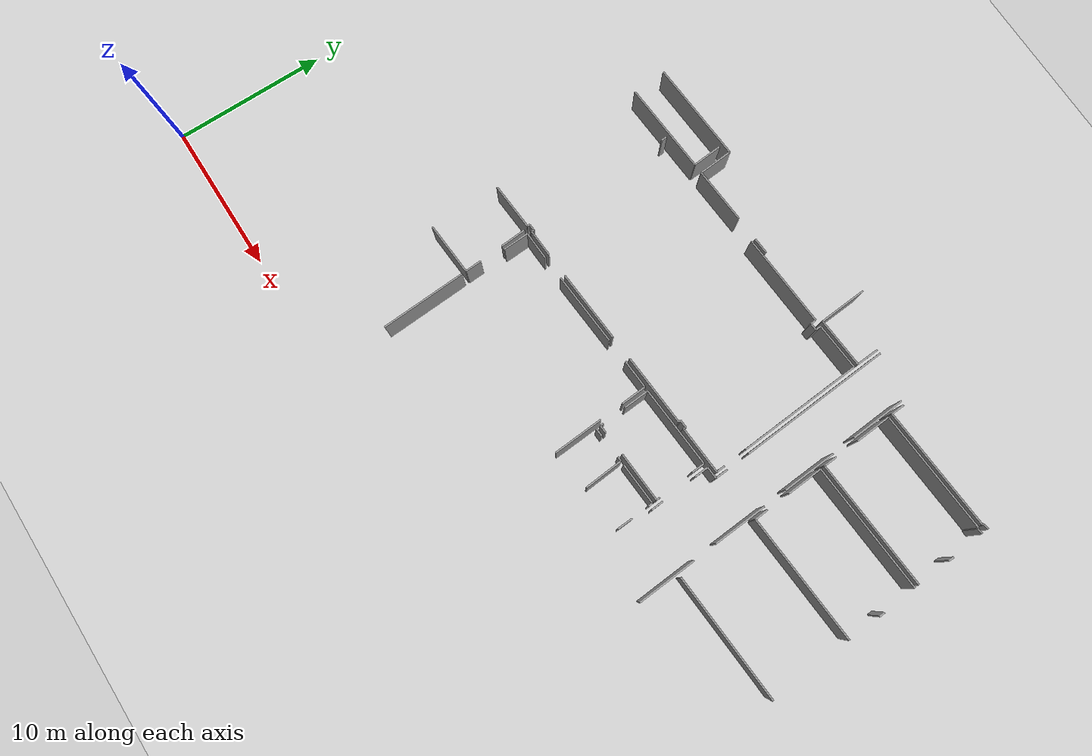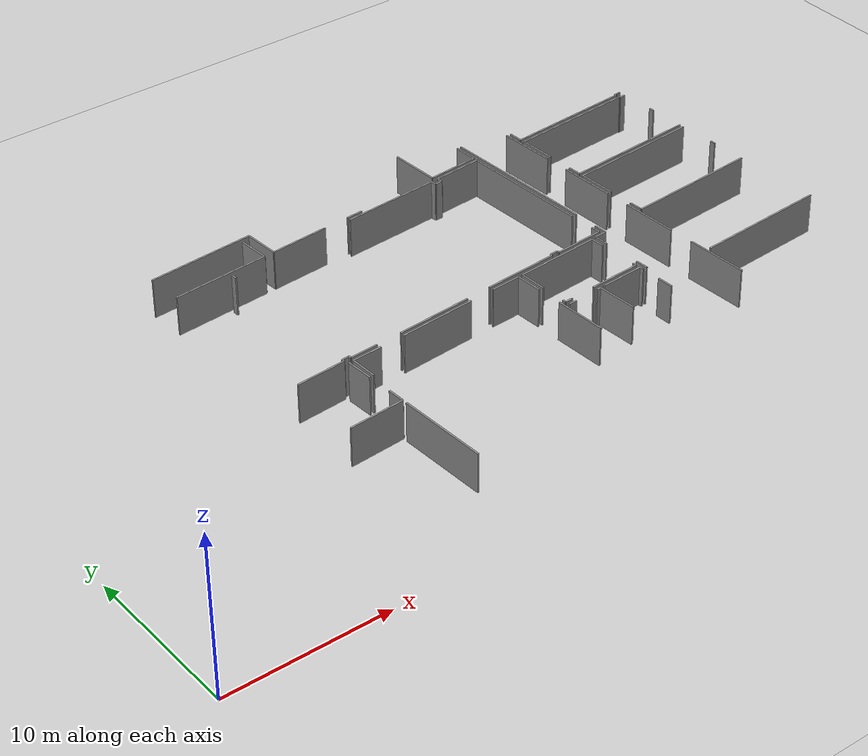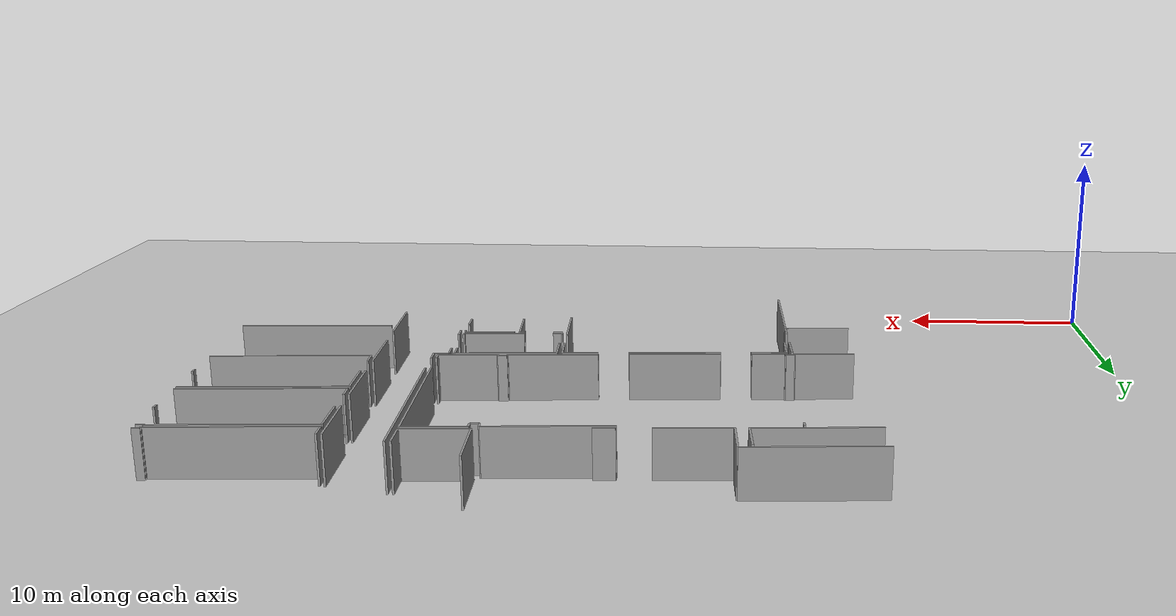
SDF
<sdf version="1.6">
 <world name="default">
  <model name="ground_plane">
   <static>1</static>
   <link name="link">
    <collision name="collision">
     <geometry><plane><normal>0 0 1</normal><size>100 100</size></plane></geometry>
     <surface><friction><ode><mu>100</mu><mu2>50</mu2></ode></friction></surface>
    </collision>
    <visual name="visual">
     <cast_shadows>0</cast_shadows>
     <geometry><plane><normal>0 0 1</normal><size>100 100</size></plane></geometry>
     <material>
      <script><uri>file://media/materials/scripts/gazebo.material</uri><name>Gazebo/Grey</name></script>
     </material>
    </visual>
   </link>
  </model>
  <model name="50025633">
   <static>1</static>
   <link name="Wall_52">
    <collision name="Wall_52_Collision">
     <geometry><box><size>3.49836622197 0.1 2.5</size></box></geometry>
     <pose>1.74918311098 0 1.25 0 0 0</pose>
    </collision>
    <visual name="Wall_52_Visual">
     <pose>1.74918311098 0 1.25 0 0 0</pose>
     <geometry><box><size>3.49836622197 0.1 2.5</size></box></geometry>
     <material>
      <script><uri>file://media/materials/scripts/gazebo.material</uri><name>Gazebo/Grey</name></script>
      <ambient>1 1 1 1</ambient>
     </material>
    </visual>
    <pose>68.6968894309 -37.3599481678 0 0 0 -3.07636271792</pose>
   </link>
   <link name="Wall_91">
    <collision name="Wall_91_Collision">
     <geometry><box><size>1.70477628408 0.1 2.5</size></box></geometry>
     <pose>0.852388142039 0 1.25 0 0 0</pose>
    </collision>
    <visual name="Wall_91_Visual">
     <pose>0.852388142039 0 1.25 0 0 0</pose>
     <geometry><box><size>1.70477628408 0.1 2.5</size></box></geometry>
     <material>
      <script><uri>file://media/materials/scripts/gazebo.material</uri><name>Gazebo/Grey</name></script>
      <ambient>1 1 1 1</ambient>
     </material>
    </visual>
    <pose>68.4355685983 -33.0010861901 0 0 0 -1.50591849774</pose>
   </link>
   <link name="Wall_92">
    <collision name="Wall_92_Collision">
     <geometry><box><size>1.08069719638 0.1 2.5</size></box></geometry>
     <pose>0.540348598191 0 1.25 0 0 0</pose>
    </collision>
    <visual name="Wall_92_Visual">
     <pose>0.540348598191 0 1.25 0 0 0</pose>
     <geometry><box><size>1.08069719638 0.1 2.5</size></box></geometry>
     <material>
      <script><uri>file://media/materials/scripts/gazebo.material</uri><name>Gazebo/Grey</name></script>
      <ambient>1 1 1 1</ambient>
     </material>
    </visual>
    <pose>68.6478520749 -36.280364096 0 0 0 -1.52540507436</pose>
   </link>
   <link name="Wall_129">
    <collision name="Wall_129_Collision">
     <geometry><box><size>5.62155952365 0.1 2.5</size></box></geometry>
     <pose>2.81077976182 0 1.25 0 0 0</pose>
    </collision>
    <visual name="Wall_129_Visual">
     <pose>2.81077976182 0 1.25 0 0 0</pose>
     <geometry><box><size>5.62155952365 0.1 2.5</size></box></geometry>
     <material>
      <script><uri>file://media/materials/scripts/gazebo.material</uri><name>Gazebo/Grey</name></script>
      <ambient>1 1 1 1</ambient>
     </material>
    </visual>
    <pose>68.7125153242 -37.6494718321 0 0 0 -1.52166965325</pose>
   </link>
   <link name="Wall_133">
    <collision name="Wall_133_Collision">
     <geometry><box><size>1.71167642976 0.1 2.5</size></box></geometry>
     <pose>0.855838214879 0 1.25 0 0 0</pose>
    </collision>
    <visual name="Wall_133_Visual">
     <pose>0.855838214879 0 1.25 0 0 0</pose>
     <geometry><box><size>1.71167642976 0.1 2.5</size></box></geometry>
     <material>
      <script><uri>file://media/materials/scripts/gazebo.material</uri><name>Gazebo/Grey</name></script>
      <ambient>1 1 1 1</ambient>
     </material>
    </visual>
    <pose>68.799664615 -34.6860148255 0 0 0 1.61036564958</pose>
   </link>
   <link name="Wall_134">
    <collision name="Wall_134_Collision">
     <geometry><box><size>1.85826231931 0.1 2.5</size></box></geometry>
     <pose>0.929131159655 0 1.25 0 0 0</pose>
    </collision>
    <visual name="Wall_134_Visual">
     <pose>0.929131159655 0 1.25 0 0 0</pose>
     <geometry><box><size>1.85826231931 0.1 2.5</size></box></geometry>
     <material>
      <script><uri>file://media/materials/scripts/gazebo.material</uri><name>Gazebo/Grey</name></script>
      <ambient>1 1 1 1</ambient>
     </material>
    </visual>
    <pose>68.7319524109 -32.9756782336 0 0 0 0.0443833431239</pose>
   </link>
   <link name="Wall_135">
    <collision name="Wall_135_Collision">
     <geometry><box><size>4.82396615874 0.1 2.5</size></box></geometry>
     <pose>2.41198307937 0 1.25 0 0 0</pose>
    </collision>
    <visual name="Wall_135_Visual">
     <pose>2.41198307937 0 1.25 0 0 0</pose>
     <geometry><box><size>4.82396615874 0.1 2.5</size></box></geometry>
     <material>
      <script><uri>file://media/materials/scripts/gazebo.material</uri><name>Gazebo/Grey</name></script>
      <ambient>1 1 1 1</ambient>
     </material>
    </visual>
    <pose>72.1732060395 -32.8078586809 0 0 0 0.0681290065202</pose>
   </link>
   <link name="Wall_136">
    <collision name="Wall_136_Collision">
     <geometry><box><size>1.89685816844 0.1 2.5</size></box></geometry>
     <pose>0.948429084222 0 1.25 0 0 0</pose>
    </collision>
    <visual name="Wall_136_Visual">
     <pose>0.948429084222 0 1.25 0 0 0</pose>
     <geometry><box><size>1.89685816844 0.1 2.5</size></box></geometry>
     <material>
      <script><uri>file://media/materials/scripts/gazebo.material</uri><name>Gazebo/Grey</name></script>
      <ambient>1 1 1 1</ambient>
     </material>
    </visual>
    <pose>78.5710565264 -32.3911681943 0 0 0 0.056958515502</pose>
   </link>
   <link name="Wall_137">
    <collision name="Wall_137_Collision">
     <geometry><box><size>1.67291849806 0.1 2.5</size></box></geometry>
     <pose>0.836459249029 0 1.25 0 0 0</pose>
    </collision>
    <visual name="Wall_137_Visual">
     <pose>0.836459249029 0 1.25 0 0 0</pose>
     <geometry><box><size>1.67291849806 0.1 2.5</size></box></geometry>
     <material>
      <script><uri>file://media/materials/scripts/gazebo.material</uri><name>Gazebo/Grey</name></script>
      <ambient>1 1 1 1</ambient>
     </material>
    </visual>
    <pose>80.4648385642 -32.2831843792 0 0 0 -1.50620325706</pose>
   </link>
   <link name="Wall_138">
    <collision name="Wall_138_Collision">
     <geometry><box><size>3.2683389742 0.1 2.5</size></box></geometry>
     <pose>1.6341694871 0 1.25 0 0 0</pose>
    </collision>
    <visual name="Wall_138_Visual">
     <pose>1.6341694871 0 1.25 0 0 0</pose>
     <geometry><box><size>3.2683389742 0.1 2.5</size></box></geometry>
     <material>
      <script><uri>file://media/materials/scripts/gazebo.material</uri><name>Gazebo/Grey</name></script>
      <ambient>1 1 1 1</ambient>
     </material>
    </visual>
    <pose>80.6620043066 -35.5491231079 0 0 0 -1.51105673993</pose>
   </link>
   <link name="Wall_141">
    <collision name="Wall_141_Collision">
     <geometry><box><size>3.12935003412 0.1 2.5</size></box></geometry>
     <pose>1.56467501706 0 1.25 0 0 0</pose>
    </collision>
    <visual name="Wall_141_Visual">
     <pose>1.56467501706 0 1.25 0 0 0</pose>
     <geometry><box><size>3.12935003412 0.1 2.5</size></box></geometry>
     <material>
      <script><uri>file://media/materials/scripts/gazebo.material</uri><name>Gazebo/Grey</name></script>
      <ambient>1 1 1 1</ambient>
     </material>
    </visual>
    <pose>86.8868266098 -31.5938665193 0 0 0 -3.08057928312</pose>
   </link>
   <link name="Wall_142">
    <collision name="Wall_142_Collision">
     <geometry><box><size>0.158038153231 0.1 2.5</size></box></geometry>
     <pose>0.0790190766157 0 1.25 0 0 0</pose>
    </collision>
    <visual name="Wall_142_Visual">
     <pose>0.0790190766157 0 1.25 0 0 0</pose>
     <geometry><box><size>0.158038153231 0.1 2.5</size></box></geometry>
     <material>
      <script><uri>file://media/materials/scripts/gazebo.material</uri><name>Gazebo/Grey</name></script>
      <ambient>1 1 1 1</ambient>
     </material>
    </visual>
    <pose>83.7632994772 -31.7846802726 0 0 0 1.61099991351</pose>
   </link>
   <link name="Wall_143">
    <collision name="Wall_143_Collision">
     <geometry><box><size>0.493308496639 0.1 2.5</size></box></geometry>
     <pose>0.246654248319 0 1.25 0 0 0</pose>
    </collision>
    <visual name="Wall_143_Visual">
     <pose>0.246654248319 0 1.25 0 0 0</pose>
     <geometry><box><size>0.493308496639 0.1 2.5</size></box></geometry>
     <material>
      <script><uri>file://media/materials/scripts/gazebo.material</uri><name>Gazebo/Grey</name></script>
      <ambient>1 1 1 1</ambient>
     </material>
    </visual>
    <pose>83.7569474881 -31.626769823 0 0 0 -3.09032251336</pose>
   </link>
   <link name="Wall_144">
    <collision name="Wall_144_Collision">
     <geometry><box><size>0.139422905689 0.1 2.5</size></box></geometry>
     <pose>0.0697114528446 0 1.25 0 0 0</pose>
    </collision>
    <visual name="Wall_144_Visual">
     <pose>0.0697114528446 0 1.25 0 0 0</pose>
     <geometry><box><size>0.139422905689 0.1 2.5</size></box></geometry>
     <material>
      <script><uri>file://media/materials/scripts/gazebo.material</uri><name>Gazebo/Grey</name></script>
      <ambient>1 1 1 1</ambient>
     </material>
    </visual>
    <pose>83.2642872115 -31.6520507397 0 0 0 -1.48046641813</pose>
   </link>
   <link name="Wall_145">
    <collision name="Wall_145_Collision">
     <geometry><box><size>4.73380179857 0.1 2.5</size></box></geometry>
     <pose>2.36690089928 0 1.25 0 0 0</pose>
    </collision>
    <visual name="Wall_145_Visual">
     <pose>2.36690089928 0 1.25 0 0 0</pose>
     <geometry><box><size>4.73380179857 0.1 2.5</size></box></geometry>
     <material>
      <script><uri>file://media/materials/scripts/gazebo.material</uri><name>Gazebo/Grey</name></script>
      <ambient>1 1 1 1</ambient>
     </material>
    </visual>
    <pose>83.27686415 -31.790905222 0 0 0 -3.0788340156</pose>
   </link>
   <link name="Wall_146">
    <collision name="Wall_146_Collision">
     <geometry><box><size>4.77494742308 0.1 2.5</size></box></geometry>
     <pose>2.38747371154 0 1.25 0 0 0</pose>
    </collision>
    <visual name="Wall_146_Visual">
     <pose>2.38747371154 0 1.25 0 0 0</pose>
     <geometry><box><size>4.77494742308 0.1 2.5</size></box></geometry>
     <material>
      <script><uri>file://media/materials/scripts/gazebo.material</uri><name>Gazebo/Grey</name></script>
      <ambient>1 1 1 1</ambient>
     </material>
    </visual>
    <pose>76.9417713157 -32.2056901119 0 0 0 -3.07542976725</pose>
   </link>
   <link name="Wall_147">
    <collision name="Wall_147_Collision">
     <geometry><box><size>1.78157904599 0.1 2.5</size></box></geometry>
     <pose>0.890789522996 0 1.25 0 0 0</pose>
    </collision>
    <visual name="Wall_147_Visual">
     <pose>0.890789522996 0 1.25 0 0 0</pose>
     <geometry><box><size>1.78157904599 0.1 2.5</size></box></geometry>
     <material>
      <script><uri>file://media/materials/scripts/gazebo.material</uri><name>Gazebo/Grey</name></script>
      <ambient>1 1 1 1</ambient>
     </material>
    </visual>
    <pose>70.5429045105 -32.6012919946 0 0 0 -3.09265624266</pose>
   </link>
   <link name="Wall_148">
    <collision name="Wall_148_Collision">
     <geometry><box><size>0.159689006612 0.1 2.5</size></box></geometry>
     <pose>0.0798445033062 0 1.25 0 0 0</pose>
    </collision>
    <visual name="Wall_148_Visual">
     <pose>0.0798445033062 0 1.25 0 0 0</pose>
     <geometry><box><size>0.159689006612 0.1 2.5</size></box></geometry>
     <material>
      <script><uri>file://media/materials/scripts/gazebo.material</uri><name>Gazebo/Grey</name></script>
      <ambient>1 1 1 1</ambient>
     </material>
    </visual>
    <pose>68.763458277 -32.6884412854 0 0 0 1.57079632679</pose>
   </link>
   <link name="Wall_149">
    <collision name="Wall_149_Collision">
     <geometry><box><size>0.443646949012 0.1 2.5</size></box></geometry>
     <pose>0.221823474506 0 1.25 0 0 0</pose>
    </collision>
    <visual name="Wall_149_Visual">
     <pose>0.221823474506 0 1.25 0 0 0</pose>
     <geometry><box><size>0.443646949012 0.1 2.5</size></box></geometry>
     <material>
      <script><uri>file://media/materials/scripts/gazebo.material</uri><name>Gazebo/Grey</name></script>
      <ambient>1 1 1 1</ambient>
     </material>
    </visual>
    <pose>68.763458277 -32.5287522788 0 0 0 -3.09260664463</pose>
   </link>
   <link name="Wall_150">
    <collision name="Wall_150_Collision">
     <geometry><box><size>0.16721418037 0.1 2.5</size></box></geometry>
     <pose>0.0836070901848 0 1.25 0 0 0</pose>
    </collision>
    <visual name="Wall_150_Visual">
     <pose>0.0836070901848 0 1.25 0 0 0</pose>
     <geometry><box><size>0.16721418037 0.1 2.5</size></box></geometry>
     <material>
      <script><uri>file://media/materials/scripts/gazebo.material</uri><name>Gazebo/Grey</name></script>
      <ambient>1 1 1 1</ambient>
     </material>
    </visual>
    <pose>68.3203435156 -32.5504760816 0 0 0 -1.6141152177</pose>
   </link>
   <link name="Wall_151">
    <collision name="Wall_151_Collision">
     <geometry><box><size>3.11337330929 0.1 2.5</size></box></geometry>
     <pose>1.55668665464 0 1.25 0 0 0</pose>
    </collision>
    <visual name="Wall_151_Visual">
     <pose>1.55668665464 0 1.25 0 0 0</pose>
     <geometry><box><size>3.11337330929 0.1 2.5</size></box></geometry>
     <material>
      <script><uri>file://media/materials/scripts/gazebo.material</uri><name>Gazebo/Grey</name></script>
      <ambient>1 1 1 1</ambient>
     </material>
    </visual>
    <pose>68.313102248 -32.7175333956 0 0 0 -3.07576820205</pose>
   </link>
   <link name="Wall_157">
    <collision name="Wall_157_Collision">
     <geometry><box><size>0.357357759727 0.1 2.5</size></box></geometry>
     <pose>0.178678879864 0 1.25 0 0 0</pose>
    </collision>
    <visual name="Wall_157_Visual">
     <pose>0.178678879864 0 1.25 0 0 0</pose>
     <geometry><box><size>0.357357759727 0.1 2.5</size></box></geometry>
     <material>
      <script><uri>file://media/materials/scripts/gazebo.material</uri><name>Gazebo/Grey</name></script>
      <ambient>1 1 1 1</ambient>
     </material>
    </visual>
    <pose>68.17170697 -22.7325876098 0 0 0 1.61667159088</pose>
   </link>
   <link name="Wall_159">
    <collision name="Wall_159_Collision">
     <geometry><box><size>6.13525297994 0.1 2.5</size></box></geometry>
     <pose>3.06762648997 0 1.25 0 0 0</pose>
    </collision>
    <visual name="Wall_159_Visual">
     <pose>3.06762648997 0 1.25 0 0 0</pose>
     <geometry><box><size>6.13525297994 0.1 2.5</size></box></geometry>
     <material>
      <script><uri>file://media/materials/scripts/gazebo.material</uri><name>Gazebo/Grey</name></script>
      <ambient>1 1 1 1</ambient>
     </material>
    </visual>
    <pose>76.5415960008 -21.8462310473 0 0 0 0.0596702015586</pose>
   </link>
   <link name="Wall_160">
    <collision name="Wall_160_Collision">
     <geometry><box><size>0.360386158556 0.1 2.5</size></box></geometry>
     <pose>0.180193079278 0 1.25 0 0 0</pose>
    </collision>
    <visual name="Wall_160_Visual">
     <pose>0.180193079278 0 1.25 0 0 0</pose>
     <geometry><box><size>0.360386158556 0.1 2.5</size></box></geometry>
     <material>
      <script><uri>file://media/materials/scripts/gazebo.material</uri><name>Gazebo/Grey</name></script>
      <ambient>1 1 1 1</ambient>
     </material>
    </visual>
    <pose>82.6659298359 -21.4803564736 0 0 0 -1.43323645024</pose>
   </link>
   <link name="Wall_161">
    <collision name="Wall_161_Collision">
     <geometry><box><size>0.44543584501 0.1 2.5</size></box></geometry>
     <pose>0.222717922505 0 1.25 0 0 0</pose>
    </collision>
    <visual name="Wall_161_Visual">
     <pose>0.222717922505 0 1.25 0 0 0</pose>
     <geometry><box><size>0.44543584501 0.1 2.5</size></box></geometry>
     <material>
      <script><uri>file://media/materials/scripts/gazebo.material</uri><name>Gazebo/Grey</name></script>
      <ambient>1 1 1 1</ambient>
     </material>
    </visual>
    <pose>82.7153483113 -21.8373382625 0 0 0 0.049360215969</pose>
   </link>
   <link name="Wall_162">
    <collision name="Wall_162_Collision">
     <geometry><box><size>0.362947478282 0.1 2.5</size></box></geometry>
     <pose>0.181473739141 0 1.25 0 0 0</pose>
    </collision>
    <visual name="Wall_162_Visual">
     <pose>0.181473739141 0 1.25 0 0 0</pose>
     <geometry><box><size>0.362947478282 0.1 2.5</size></box></geometry>
     <material>
      <script><uri>file://media/materials/scripts/gazebo.material</uri><name>Gazebo/Grey</name></script>
      <ambient>1 1 1 1</ambient>
     </material>
    </visual>
    <pose>83.1602416297 -21.8153603801 0 0 0 1.61631496843</pose>
   </link>
   <link name="Wall_163">
    <collision name="Wall_163_Collision">
     <geometry><box><size>3.08778498123 0.1 2.5</size></box></geometry>
     <pose>1.54389249062 0 1.25 0 0 0</pose>
    </collision>
    <visual name="Wall_163_Visual">
     <pose>1.54389249062 0 1.25 0 0 0</pose>
     <geometry><box><size>3.08778498123 0.1 2.5</size></box></geometry>
     <material>
      <script><uri>file://media/materials/scripts/gazebo.material</uri><name>Gazebo/Grey</name></script>
      <ambient>1 1 1 1</ambient>
     </material>
    </visual>
    <pose>83.1437264579 -21.4527888408 0 0 0 0.0658347090613</pose>
   </link>
   <link name="Wall_164">
    <collision name="Wall_164_Collision">
     <geometry><box><size>8.20057524663 0.1 2.5</size></box></geometry>
     <pose>4.10028762332 0 1.25 0 0 0</pose>
    </collision>
    <visual name="Wall_164_Visual">
     <pose>4.10028762332 0 1.25 0 0 0</pose>
     <geometry><box><size>8.20057524663 0.1 2.5</size></box></geometry>
     <material>
      <script><uri>file://media/materials/scripts/gazebo.material</uri><name>Gazebo/Grey</name></script>
      <ambient>1 1 1 1</ambient>
     </material>
    </visual>
    <pose>86.2248223031 -21.2496522286 0 0 0 -1.50874375874</pose>
   </link>
   <link name="Wall_165">
    <collision name="Wall_165_Collision">
     <geometry><box><size>0.580390725282 0.1 2.5</size></box></geometry>
     <pose>0.290195362641 0 1.25 0 0 0</pose>
    </collision>
    <visual name="Wall_165_Visual">
     <pose>0.290195362641 0 1.25 0 0 0</pose>
     <geometry><box><size>0.580390725282 0.1 2.5</size></box></geometry>
     <material>
      <script><uri>file://media/materials/scripts/gazebo.material</uri><name>Gazebo/Grey</name></script>
      <ambient>1 1 1 1</ambient>
     </material>
    </visual>
    <pose>86.8455386804 -31.0149462304 0 0 0 -1.49959802721</pose>
   </link>
   <link name="Wall_166">
    <collision name="Wall_166_Collision">
     <geometry><box><size>1.05881522224 0.1 2.5</size></box></geometry>
     <pose>0.529407611119 0 1.25 0 0 0</pose>
    </collision>
    <visual name="Wall_166_Visual">
     <pose>0.529407611119 0 1.25 0 0 0</pose>
     <geometry><box><size>1.05881522224 0.1 2.5</size></box></geometry>
     <material>
      <script><uri>file://media/materials/scripts/gazebo.material</uri><name>Gazebo/Grey</name></script>
      <ambient>1 1 1 1</ambient>
     </material>
    </visual>
    <pose>77.6155903221 -21.5232959201 0 0 0 -3.08901589814</pose>
   </link>
   <link name="Wall_167">
    <collision name="Wall_167_Collision">
     <geometry><box><size>3.69764949805 0.1 2.5</size></box></geometry>
     <pose>1.84882474902 0 1.25 0 0 0</pose>
    </collision>
    <visual name="Wall_167_Visual">
     <pose>1.84882474902 0 1.25 0 0 0</pose>
     <geometry><box><size>3.69764949805 0.1 2.5</size></box></geometry>
     <material>
      <script><uri>file://media/materials/scripts/gazebo.material</uri><name>Gazebo/Grey</name></script>
      <ambient>1 1 1 1</ambient>
     </material>
    </visual>
    <pose>74.9519472023 -21.6551632144 0 0 0 -3.07671567711</pose>
   </link>
   <link name="Wall_168">
    <collision name="Wall_168_Collision">
     <geometry><box><size>2.24959186515 0.1 2.5</size></box></geometry>
     <pose>1.12479593257 0 1.25 0 0 0</pose>
    </collision>
    <visual name="Wall_168_Visual">
     <pose>1.12479593257 0 1.25 0 0 0</pose>
     <geometry><box><size>2.24959186515 0.1 2.5</size></box></geometry>
     <material>
      <script><uri>file://media/materials/scripts/gazebo.material</uri><name>Gazebo/Grey</name></script>
      <ambient>1 1 1 1</ambient>
     </material>
    </visual>
    <pose>71.2620767193 -21.894887284 0 0 0 1.63867174811</pose>
   </link>
   <link name="Wall_169">
    <collision name="Wall_169_Collision">
     <geometry><box><size>6.69285484244 0.1 2.5</size></box></geometry>
     <pose>3.34642742122 0 1.25 0 0 0</pose>
    </collision>
    <visual name="Wall_169_Visual">
     <pose>3.34642742122 0 1.25 0 0 0</pose>
     <geometry><box><size>6.69285484244 0.1 2.5</size></box></geometry>
     <material>
      <script><uri>file://media/materials/scripts/gazebo.material</uri><name>Gazebo/Grey</name></script>
      <ambient>1 1 1 1</ambient>
     </material>
    </visual>
    <pose>71.1095019405 -19.6504754464 0 0 0 -3.07931237481</pose>
   </link>
   <link name="Wall_181">
    <collision name="Wall_181_Collision">
     <geometry><box><size>6.05910928792 0.1 2.5</size></box></geometry>
     <pose>3.02955464396 0 1.25 0 0 0</pose>
    </collision>
    <visual name="Wall_181_Visual">
     <pose>3.02955464396 0 1.25 0 0 0</pose>
     <geometry><box><size>6.05910928792 0.1 2.5</size></box></geometry>
     <material>
      <script><uri>file://media/materials/scripts/gazebo.material</uri><name>Gazebo/Grey</name></script>
      <ambient>1 1 1 1</ambient>
     </material>
    </visual>
    <pose>70.6190013403 -21.9309665822 0 0 0 -3.07827272142</pose>
   </link>
   <link name="Wall_185">
    <collision name="Wall_185_Collision">
     <geometry><box><size>1.95926395237 0.1 2.5</size></box></geometry>
     <pose>0.979631976184 0 1.25 0 0 0</pose>
    </collision>
    <visual name="Wall_185_Visual">
     <pose>0.979631976184 0 1.25 0 0 0</pose>
     <geometry><box><size>1.95926395237 0.1 2.5</size></box></geometry>
     <material>
      <script><uri>file://media/materials/scripts/gazebo.material</uri><name>Gazebo/Grey</name></script>
      <ambient>1 1 1 1</ambient>
     </material>
    </visual>
    <pose>70.4703647947 -19.9773488068 0 0 0 -1.49485990707</pose>
   </link>
   <link name="Wall_190">
    <collision name="Wall_190_Collision">
     <geometry><box><size>0.803759660868 0.1 2.5</size></box></geometry>
     <pose>0.401879830434 0 1.25 0 0 0</pose>
    </collision>
    <visual name="Wall_190_Visual">
     <pose>0.401879830434 0 1.25 0 0 0</pose>
     <geometry><box><size>0.803759660868 0.1 2.5</size></box></geometry>
     <material>
      <script><uri>file://media/materials/scripts/gazebo.material</uri><name>Gazebo/Grey</name></script>
      <ambient>1 1 1 1</ambient>
     </material>
    </visual>
    <pose>86.6313496071 -35.9744522997 0 0 0 1.63928851541</pose>
   </link>
   <link name="Wall_191">
    <collision name="Wall_191_Collision">
     <geometry><box><size>0.924139256032 0.1 2.5</size></box></geometry>
     <pose>0.462069628016 0 1.25 0 0 0</pose>
    </collision>
    <visual name="Wall_191_Visual">
     <pose>0.462069628016 0 1.25 0 0 0</pose>
     <geometry><box><size>0.924139256032 0.1 2.5</size></box></geometry>
     <material>
      <script><uri>file://media/materials/scripts/gazebo.material</uri><name>Gazebo/Grey</name></script>
      <ambient>1 1 1 1</ambient>
     </material>
    </visual>
    <pose>86.4280859551 -32.8054449251 0 0 0 1.62429698506</pose>
   </link>
   <link name="Wall_192">
    <collision name="Wall_192_Collision">
     <geometry><box><size>0.775673754788 0.1 2.5</size></box></geometry>
     <pose>0.387836877394 0 1.25 0 0 0</pose>
    </collision>
    <visual name="Wall_192_Visual">
     <pose>0.387836877394 0 1.25 0 0 0</pose>
     <geometry><box><size>0.775673754788 0.1 2.5</size></box></geometry>
     <material>
      <script><uri>file://media/materials/scripts/gazebo.material</uri><name>Gazebo/Grey</name></script>
      <ambient>1 1 1 1</ambient>
     </material>
    </visual>
    <pose>86.3786674797 -31.8826279449 0 0 0 0.0565341811993</pose>
   </link>
   <link name="Wall_193">
    <collision name="Wall_193_Collision">
     <geometry><box><size>0.836061732629 0.1 2.5</size></box></geometry>
     <pose>0.418030866314 0 1.25 0 0 0</pose>
    </collision>
    <visual name="Wall_193_Visual">
     <pose>0.418030866314 0 1.25 0 0 0</pose>
     <geometry><box><size>0.836061732629 0.1 2.5</size></box></geometry>
     <material>
      <script><uri>file://media/materials/scripts/gazebo.material</uri><name>Gazebo/Grey</name></script>
      <ambient>1 1 1 1</ambient>
     </material>
    </visual>
    <pose>87.1531019939 -31.83879922 0 0 0 1.62339536106</pose>
   </link>
   <link name="Wall_194">
    <collision name="Wall_194_Collision">
     <geometry><box><size>9.99139438408 0.1 2.5</size></box></geometry>
     <pose>4.99569719204 0 1.25 0 0 0</pose>
    </collision>
    <visual name="Wall_194_Visual">
     <pose>4.99569719204 0 1.25 0 0 0</pose>
     <geometry><box><size>9.99139438408 0.1 2.5</size></box></geometry>
     <material>
      <script><uri>file://media/materials/scripts/gazebo.material</uri><name>Gazebo/Grey</name></script>
      <ambient>1 1 1 1</ambient>
     </material>
    </visual>
    <pose>87.0239025351 -29.4344442962 0 0 0 1.63231175598</pose>
   </link>
   <link name="Wall_209">
    <collision name="Wall_209_Collision">
     <geometry><box><size>3.60114246687 0.1 2.5</size></box></geometry>
     <pose>1.80057123344 0 1.25 0 0 0</pose>
    </collision>
    <visual name="Wall_209_Visual">
     <pose>1.80057123344 0 1.25 0 0 0</pose>
     <geometry><box><size>3.60114246687 0.1 2.5</size></box></geometry>
     <material>
      <script><uri>file://media/materials/scripts/gazebo.material</uri><name>Gazebo/Grey</name></script>
      <ambient>1 1 1 1</ambient>
     </material>
    </visual>
    <pose>89.3845557736 -20.1376730123 0 0 0 -1.50760732132</pose>
   </link>
   <link name="Wall_210">
    <collision name="Wall_210_Collision">
     <geometry><box><size>3.5554118278 0.1 2.5</size></box></geometry>
     <pose>1.7777059139 0 1.25 0 0 0</pose>
    </collision>
    <visual name="Wall_210_Visual">
     <pose>1.7777059139 0 1.25 0 0 0</pose>
     <geometry><box><size>3.5554118278 0.1 2.5</size></box></geometry>
     <material>
      <script><uri>file://media/materials/scripts/gazebo.material</uri><name>Gazebo/Grey</name></script>
      <ambient>1 1 1 1</ambient>
     </material>
    </visual>
    <pose>89.7059664234 -25.3043809669 0 0 0 -1.51370229435</pose>
   </link>
   <link name="Wall_211">
    <collision name="Wall_211_Collision">
     <geometry><box><size>3.57000885219 0.1 2.5</size></box></geometry>
     <pose>1.78500442609 0 1.25 0 0 0</pose>
    </collision>
    <visual name="Wall_211_Visual">
     <pose>1.78500442609 0 1.25 0 0 0</pose>
     <geometry><box><size>3.57000885219 0.1 2.5</size></box></geometry>
     <material>
      <script><uri>file://media/materials/scripts/gazebo.material</uri><name>Gazebo/Grey</name></script>
      <ambient>1 1 1 1</ambient>
     </material>
    </visual>
    <pose>90.0066695886 -30.4248464407 0 0 0 -1.51325876444</pose>
   </link>
   <link name="Wall_212">
    <collision name="Wall_212_Collision">
     <geometry><box><size>3.88623449083 0.1 2.5</size></box></geometry>
     <pose>1.94311724542 0 1.25 0 0 0</pose>
    </collision>
    <visual name="Wall_212_Visual">
     <pose>1.94311724542 0 1.25 0 0 0</pose>
     <geometry><box><size>3.88623449083 0.1 2.5</size></box></geometry>
     <material>
      <script><uri>file://media/materials/scripts/gazebo.material</uri><name>Gazebo/Grey</name></script>
      <ambient>1 1 1 1</ambient>
     </material>
    </visual>
    <pose>90.3157573794 -35.5535695003 0 0 0 -1.50884243767</pose>
   </link>
   <link name="Wall_224">
    <collision name="Wall_224_Collision">
     <geometry><box><size>0.885119387373 0.1 2.5</size></box></geometry>
     <pose>0.442559693687 0 1.25 0 0 0</pose>
    </collision>
    <visual name="Wall_224_Visual">
     <pose>0.442559693687 0 1.25 0 0 0</pose>
     <geometry><box><size>0.885119387373 0.1 2.5</size></box></geometry>
     <material>
      <script><uri>file://media/materials/scripts/gazebo.material</uri><name>Gazebo/Grey</name></script>
      <ambient>1 1 1 1</ambient>
     </material>
    </visual>
    <pose>89.6533719534 -20.1722278331 0 0 0 -1.51651593502</pose>
   </link>
   <link name="Wall_225">
    <collision name="Wall_225_Collision">
     <geometry><box><size>7.98533723533 0.1 2.5</size></box></geometry>
     <pose>3.99266861766 0 1.25 0 0 0</pose>
    </collision>
    <visual name="Wall_225_Visual">
     <pose>3.99266861766 0 1.25 0 0 0</pose>
     <geometry><box><size>7.98533723533 0.1 2.5</size></box></geometry>
     <material>
      <script><uri>file://media/materials/scripts/gazebo.material</uri><name>Gazebo/Grey</name></script>
      <ambient>1 1 1 1</ambient>
     </material>
    </visual>
    <pose>89.7013929912 -21.0560436001 0 0 0 0.0620536125376</pose>
   </link>
   <link name="Wall_226">
    <collision name="Wall_226_Collision">
     <geometry><box><size>0.0884196886255 0.1 2.5</size></box></geometry>
     <pose>0.0442098443127 0 1.25 0 0 0</pose>
    </collision>
    <visual name="Wall_226_Visual">
     <pose>0.0442098443127 0 1.25 0 0 0</pose>
     <geometry><box><size>0.0884196886255 0.1 2.5</size></box></geometry>
     <material>
      <script><uri>file://media/materials/scripts/gazebo.material</uri><name>Gazebo/Grey</name></script>
      <ambient>1 1 1 1</ambient>
     </material>
    </visual>
    <pose>97.6713607866 -20.5608425278 0 0 0 1.57079632679</pose>
   </link>
   <link name="Wall_227">
    <collision name="Wall_227_Collision">
     <geometry><box><size>0.398800115717 0.1 2.5</size></box></geometry>
     <pose>0.199400057858 0 1.25 0 0 0</pose>
    </collision>
    <visual name="Wall_227_Visual">
     <pose>0.199400057858 0 1.25 0 0 0</pose>
     <geometry><box><size>0.398800115717 0.1 2.5</size></box></geometry>
     <material>
      <script><uri>file://media/materials/scripts/gazebo.material</uri><name>Gazebo/Grey</name></script>
      <ambient>1 1 1 1</ambient>
     </material>
    </visual>
    <pose>97.6713607866 -20.4724228392 0 0 0 0.116215455639</pose>
   </link>
   <link name="Wall_228">
    <collision name="Wall_228_Collision">
     <geometry><box><size>0.355602573878 0.1 2.5</size></box></geometry>
     <pose>0.177801286939 0 1.25 0 0 0</pose>
    </collision>
    <visual name="Wall_228_Visual">
     <pose>0.177801286939 0 1.25 0 0 0</pose>
     <geometry><box><size>0.355602573878 0.1 2.5</size></box></geometry>
     <material>
      <script><uri>file://media/materials/scripts/gazebo.material</uri><name>Gazebo/Grey</name></script>
      <ambient>1 1 1 1</ambient>
     </material>
    </visual>
    <pose>98.241261251 -23.409455571 0 0 0 1.59938039071</pose>
   </link>
   <link name="Wall_229">
    <collision name="Wall_229_Collision">
     <geometry><box><size>0.392938996601 0.1 2.5</size></box></geometry>
     <pose>0.1964694983 0 1.25 0 0 0</pose>
    </collision>
    <visual name="Wall_229_Visual">
     <pose>0.1964694983 0 1.25 0 0 0</pose>
     <geometry><box><size>0.392938996601 0.1 2.5</size></box></geometry>
     <material>
      <script><uri>file://media/materials/scripts/gazebo.material</uri><name>Gazebo/Grey</name></script>
      <ambient>1 1 1 1</ambient>
     </material>
    </visual>
    <pose>98.0819533637 -20.8830154163 0 0 0 -3.06100209411</pose>
   </link>
   <link name="Wall_230">
    <collision name="Wall_230_Collision">
     <geometry><box><size>0.0697804674291 0.1 2.5</size></box></geometry>
     <pose>0.0348902337146 0 1.25 0 0 0</pose>
    </collision>
    <visual name="Wall_230_Visual">
     <pose>0.0348902337146 0 1.25 0 0 0</pose>
     <geometry><box><size>0.0697804674291 0.1 2.5</size></box></geometry>
     <material>
      <script><uri>file://media/materials/scripts/gazebo.material</uri><name>Gazebo/Grey</name></script>
      <ambient>1 1 1 1</ambient>
     </material>
    </visual>
    <pose>97.6902897142 -20.9146483221 0 0 0 1.66195069228</pose>
   </link>
   <link name="Wall_231">
    <collision name="Wall_231_Collision">
     <geometry><box><size>7.95853828397 0.1 2.5</size></box></geometry>
     <pose>3.97926914198 0 1.25 0 0 0</pose>
    </collision>
    <visual name="Wall_231_Visual">
     <pose>3.97926914198 0 1.25 0 0 0</pose>
     <geometry><box><size>7.95853828397 0.1 2.5</size></box></geometry>
     <material>
      <script><uri>file://media/materials/scripts/gazebo.material</uri><name>Gazebo/Grey</name></script>
      <ambient>1 1 1 1</ambient>
     </material>
    </visual>
    <pose>97.6839377251 -20.8451575611 0 0 0 -3.07993756555</pose>
   </link>
   <link name="Wall_232">
    <collision name="Wall_232_Collision">
     <geometry><box><size>2.35022368441 0.1 2.5</size></box></geometry>
     <pose>1.1751118422 0 1.25 0 0 0</pose>
    </collision>
    <visual name="Wall_232_Visual">
     <pose>1.1751118422 0 1.25 0 0 0</pose>
     <geometry><box><size>2.35022368441 0.1 2.5</size></box></geometry>
     <material>
      <script><uri>file://media/materials/scripts/gazebo.material</uri><name>Gazebo/Grey</name></script>
      <ambient>1 1 1 1</ambient>
     </material>
    </visual>
    <pose>89.7405212442 -21.3355311216 0 0 0 -1.51205954916</pose>
   </link>
   <link name="Wall_233">
    <collision name="Wall_233_Collision">
     <geometry><box><size>0.873099988772 0.1 2.5</size></box></geometry>
     <pose>0.436549994386 0 1.25 0 0 0</pose>
    </collision>
    <visual name="Wall_233_Visual">
     <pose>0.436549994386 0 1.25 0 0 0</pose>
     <geometry><box><size>0.873099988772 0.1 2.5</size></box></geometry>
     <material>
      <script><uri>file://media/materials/scripts/gazebo.material</uri><name>Gazebo/Grey</name></script>
      <ambient>1 1 1 1</ambient>
     </material>
    </visual>
    <pose>89.9583944712 -25.2869765167 0 0 0 -1.51256170673</pose>
   </link>
   <link name="Wall_234">
    <collision name="Wall_234_Collision">
     <geometry><box><size>8.40190593151 0.1 2.5</size></box></geometry>
     <pose>4.20095296575 0 1.25 0 0 0</pose>
    </collision>
    <visual name="Wall_234_Visual">
     <pose>4.20095296575 0 1.25 0 0 0</pose>
     <geometry><box><size>8.40190593151 0.1 2.5</size></box></geometry>
     <material>
      <script><uri>file://media/materials/scripts/gazebo.material</uri><name>Gazebo/Grey</name></script>
      <ambient>1 1 1 1</ambient>
     </material>
    </visual>
    <pose>90.0092103842 -26.1585964645 0 0 0 0.0619877759464</pose>
   </link>
   <link name="Wall_235">
    <collision name="Wall_235_Collision">
     <geometry><box><size>0.359520990885 0.1 2.5</size></box></geometry>
     <pose>0.179760495443 0 1.25 0 0 0</pose>
    </collision>
    <visual name="Wall_235_Visual">
     <pose>0.179760495443 0 1.25 0 0 0</pose>
     <geometry><box><size>0.359520990885 0.1 2.5</size></box></geometry>
     <material>
      <script><uri>file://media/materials/scripts/gazebo.material</uri><name>Gazebo/Grey</name></script>
      <ambient>1 1 1 1</ambient>
     </material>
    </visual>
    <pose>98.5601311051 -28.5536774841 0 0 0 1.61674909721</pose>
   </link>
   <link name="Wall_236">
    <collision name="Wall_236_Collision">
     <geometry><box><size>8.38968554731 0.1 2.5</size></box></geometry>
     <pose>4.19484277365 0 1.25 0 0 0</pose>
    </collision>
    <visual name="Wall_236_Visual">
     <pose>4.19484277365 0 1.25 0 0 0</pose>
     <geometry><box><size>8.38968554731 0.1 2.5</size></box></geometry>
     <material>
      <script><uri>file://media/materials/scripts/gazebo.material</uri><name>Gazebo/Grey</name></script>
      <ambient>1 1 1 1</ambient>
     </material>
    </visual>
    <pose>98.4013313769 -25.9308141344 0 0 0 -3.07912000393</pose>
   </link>
   <link name="Wall_237">
    <collision name="Wall_237_Collision">
     <geometry><box><size>2.36745428695 0.1 2.5</size></box></geometry>
     <pose>1.18372714347 0 1.25 0 0 0</pose>
    </collision>
    <visual name="Wall_237_Visual">
     <pose>1.18372714347 0 1.25 0 0 0</pose>
     <geometry><box><size>2.36745428695 0.1 2.5</size></box></geometry>
     <material>
      <script><uri>file://media/materials/scripts/gazebo.material</uri><name>Gazebo/Grey</name></script>
      <ambient>1 1 1 1</ambient>
     </material>
    </visual>
    <pose>90.028012272 -26.4545991577 0 0 0 -1.50990722272</pose>
   </link>
   <link name="Wall_238">
    <collision name="Wall_238_Collision">
     <geometry><box><size>0.8958630184 0.1 2.5</size></box></geometry>
     <pose>0.4479315092 0 1.25 0 0 0</pose>
    </collision>
    <visual name="Wall_238_Visual">
     <pose>0.4479315092 0 1.25 0 0 0</pose>
     <geometry><box><size>0.8958630184 0.1 2.5</size></box></geometry>
     <material>
      <script><uri>file://media/materials/scripts/gazebo.material</uri><name>Gazebo/Grey</name></script>
      <ambient>1 1 1 1</ambient>
     </material>
    </visual>
    <pose>90.263416989 -30.3932135348 0 0 0 -1.49770056967</pose>
   </link>
   <link name="Wall_239">
    <collision name="Wall_239_Collision">
     <geometry><box><size>8.38133084987 0.1 2.5</size></box></geometry>
     <pose>4.19066542493 0 1.25 0 0 0</pose>
    </collision>
    <visual name="Wall_239_Visual">
     <pose>4.19066542493 0 1.25 0 0 0</pose>
     <geometry><box><size>8.38133084987 0.1 2.5</size></box></geometry>
     <material>
      <script><uri>file://media/materials/scripts/gazebo.material</uri><name>Gazebo/Grey</name></script>
      <ambient>1 1 1 1</ambient>
     </material>
    </visual>
    <pose>90.328842477 -31.2866843252 0 0 0 0.0654056397358</pose>
   </link>
   <link name="Wall_243">
    <collision name="Wall_243_Collision">
     <geometry><box><size>8.34601161782 0.1 2.5</size></box></geometry>
     <pose>4.17300580891 0 1.25 0 0 0</pose>
    </collision>
    <visual name="Wall_243_Visual">
     <pose>4.17300580891 0 1.25 0 0 0</pose>
     <geometry><box><size>8.34601161782 0.1 2.5</size></box></geometry>
     <material>
      <script><uri>file://media/materials/scripts/gazebo.material</uri><name>Gazebo/Grey</name></script>
      <ambient>1 1 1 1</ambient>
     </material>
    </visual>
    <pose>90.6832834702 -36.7147131124 0 0 0 0.0612138963521</pose>
   </link>
   <link name="Wall_266">
    <collision name="Wall_266_Collision">
     <geometry><box><size>2.71754685472 0.1 2.5</size></box></geometry>
     <pose>1.35877342736 0 1.25 0 0 0</pose>
    </collision>
    <visual name="Wall_266_Visual">
     <pose>1.35877342736 0 1.25 0 0 0</pose>
     <geometry><box><size>2.71754685472 0.1 2.5</size></box></geometry>
     <material>
      <script><uri>file://media/materials/scripts/gazebo.material</uri><name>Gazebo/Grey</name></script>
      <ambient>1 1 1 1</ambient>
     </material>
    </visual>
    <pose>83.6050079082 -35.8756153489 0 0 0 0.0566420672166</pose>
   </link>
   <link name="Wall_267">
    <collision name="Wall_267_Collision">
     <geometry><box><size>0.272762341821 0.1 2.5</size></box></geometry>
     <pose>0.136381170911 0 1.25 0 0 0</pose>
    </collision>
    <visual name="Wall_267_Visual">
     <pose>0.136381170911 0 1.25 0 0 0</pose>
     <geometry><box><size>0.272762341821 0.1 2.5</size></box></geometry>
     <material>
      <script><uri>file://media/materials/scripts/gazebo.material</uri><name>Gazebo/Grey</name></script>
      <ambient>1 1 1 1</ambient>
     </material>
    </visual>
    <pose>86.3181965432 -35.7217701723 0 0 0 -1.40894013365</pose>
   </link>
   <link name="Wall_268">
    <collision name="Wall_268_Collision">
     <geometry><box><size>1.02768259441 0.1 2.5</size></box></geometry>
     <pose>0.513841297204 0 1.25 0 0 0</pose>
    </collision>
    <visual name="Wall_268_Visual">
     <pose>0.513841297204 0 1.25 0 0 0</pose>
     <geometry><box><size>1.02768259441 0.1 2.5</size></box></geometry>
     <material>
      <script><uri>file://media/materials/scripts/gazebo.material</uri><name>Gazebo/Grey</name></script>
      <ambient>1 1 1 1</ambient>
     </material>
    </visual>
    <pose>86.4223691649 -37.172310409 0 0 0 -1.52244295713</pose>
   </link>
   <link name="Wall_269">
    <collision name="Wall_269_Collision">
     <geometry><box><size>3.27330289446 0.1 2.5</size></box></geometry>
     <pose>1.63665144723 0 1.25 0 0 0</pose>
    </collision>
    <visual name="Wall_269_Visual">
     <pose>1.63665144723 0 1.25 0 0 0</pose>
     <geometry><box><size>3.27330289446 0.1 2.5</size></box></geometry>
     <material>
      <script><uri>file://media/materials/scripts/gazebo.material</uri><name>Gazebo/Grey</name></script>
      <ambient>1 1 1 1</ambient>
     </material>
    </visual>
    <pose>86.307271122 -35.42525932 0 0 0 -3.08450965703</pose>
   </link>
   <link name="Wall_270">
    <collision name="Wall_270_Collision">
     <geometry><box><size>0.506313224127 0.1 2.5</size></box></geometry>
     <pose>0.253156612063 0 1.25 0 0 0</pose>
    </collision>
    <visual name="Wall_270_Visual">
     <pose>0.253156612063 0 1.25 0 0 0</pose>
     <geometry><box><size>0.506313224127 0.1 2.5</size></box></geometry>
     <material>
      <script><uri>file://media/materials/scripts/gazebo.material</uri><name>Gazebo/Grey</name></script>
      <ambient>1 1 1 1</ambient>
     </material>
    </visual>
    <pose>81.4546055097 -35.7169426606 0 0 0 -3.08460491508</pose>
   </link>
   <link name="Wall_271">
    <collision name="Wall_271_Collision">
     <geometry><box><size>0.213168742431 0.1 2.5</size></box></geometry>
     <pose>0.106584371215 0 1.25 0 0 0</pose>
    </collision>
    <visual name="Wall_271_Visual">
     <pose>0.106584371215 0 1.25 0 0 0</pose>
     <geometry><box><size>0.213168742431 0.1 2.5</size></box></geometry>
     <material>
      <script><uri>file://media/materials/scripts/gazebo.material</uri><name>Gazebo/Grey</name></script>
      <ambient>1 1 1 1</ambient>
     </material>
    </visual>
    <pose>80.9491142151 -35.7457806912 0 0 0 1.60477251348</pose>
   </link>
   <link name="Wall_272">
    <collision name="Wall_272_Collision">
     <geometry><box><size>1.68277195622 0.1 2.5</size></box></geometry>
     <pose>0.841385978111 0 1.25 0 0 0</pose>
    </collision>
    <visual name="Wall_272_Visual">
     <pose>0.841385978111 0 1.25 0 0 0</pose>
     <geometry><box><size>1.68277195622 0.1 2.5</size></box></geometry>
     <material>
      <script><uri>file://media/materials/scripts/gazebo.material</uri><name>Gazebo/Grey</name></script>
      <ambient>1 1 1 1</ambient>
     </material>
    </visual>
    <pose>80.845195673 -33.9574416729 0 0 0 1.62714492983</pose>
   </link>
   <link name="Wall_273">
    <collision name="Wall_273_Collision">
     <geometry><box><size>5.3417451558 0.1 2.5</size></box></geometry>
     <pose>2.6708725779 0 1.25 0 0 0</pose>
    </collision>
    <visual name="Wall_273_Visual">
     <pose>2.6708725779 0 1.25 0 0 0</pose>
     <geometry><box><size>5.3417451558 0.1 2.5</size></box></geometry>
     <material>
      <script><uri>file://media/materials/scripts/gazebo.material</uri><name>Gazebo/Grey</name></script>
      <ambient>1 1 1 1</ambient>
     </material>
    </visual>
    <pose>80.7504239953 -32.2773405492 0 0 0 0.0638993519382</pose>
   </link>
   <link name="Wall_274">
    <collision name="Wall_274_Collision">
     <geometry><box><size>0.873085237752 0.1 2.5</size></box></geometry>
     <pose>0.436542618876 0 1.25 0 0 0</pose>
    </collision>
    <visual name="Wall_274_Visual">
     <pose>0.436542618876 0 1.25 0 0 0</pose>
     <geometry><box><size>0.873085237752 0.1 2.5</size></box></geometry>
     <material>
      <script><uri>file://media/materials/scripts/gazebo.material</uri><name>Gazebo/Grey</name></script>
      <ambient>1 1 1 1</ambient>
     </material>
    </visual>
    <pose>86.0812673489 -31.9362387332 0 0 0 -1.51285222689</pose>
   </link>
   <link name="Wall_275">
    <collision name="Wall_275_Collision">
     <geometry><box><size>0.247460713758 0.1 2.5</size></box></geometry>
     <pose>0.123730356879 0 1.25 0 0 0</pose>
    </collision>
    <visual name="Wall_275_Visual">
     <pose>0.123730356879 0 1.25 0 0 0</pose>
     <geometry><box><size>0.247460713758 0.1 2.5</size></box></geometry>
     <material>
      <script><uri>file://media/materials/scripts/gazebo.material</uri><name>Gazebo/Grey</name></script>
      <ambient>1 1 1 1</ambient>
     </material>
    </visual>
    <pose>86.2963457007 -35.1780399032 0 0 0 -1.52663184665</pose>
   </link>
   <link name="Wall_278">
    <collision name="Wall_278_Collision">
     <geometry><box><size>0.509364467295 0.1 2.5</size></box></geometry>
     <pose>0.254682233647 0 1.25 0 0 0</pose>
    </collision>
    <visual name="Wall_278_Visual">
     <pose>0.254682233647 0 1.25 0 0 0</pose>
     <geometry><box><size>0.509364467295 0.1 2.5</size></box></geometry>
     <material>
      <script><uri>file://media/materials/scripts/gazebo.material</uri><name>Gazebo/Grey</name></script>
      <ambient>1 1 1 1</ambient>
     </material>
    </visual>
    <pose>80.9806200812 -36.0441971403 0 0 0 0.0568958093362</pose>
   </link>
   <link name="Wall_279">
    <collision name="Wall_279_Collision">
     <geometry><box><size>0.292799139947 0.1 2.5</size></box></geometry>
     <pose>0.146399569974 0 1.25 0 0 0</pose>
    </collision>
    <visual name="Wall_279_Visual">
     <pose>0.146399569974 0 1.25 0 0 0</pose>
     <geometry><box><size>0.292799139947 0.1 2.5</size></box></geometry>
     <material>
      <script><uri>file://media/materials/scripts/gazebo.material</uri><name>Gazebo/Grey</name></script>
      <ambient>1 1 1 1</ambient>
     </material>
    </visual>
    <pose>83.0319314493 -35.9044533796 0 0 0 0.0573035574369</pose>
   </link>
   <link name="Wall_280">
    <collision name="Wall_280_Collision">
     <geometry><box><size>2.52993146099 0.1 2.5</size></box></geometry>
     <pose>1.2649657305 0 1.25 0 0 0</pose>
    </collision>
    <visual name="Wall_280_Visual">
     <pose>1.2649657305 0 1.25 0 0 0</pose>
     <geometry><box><size>2.52993146099 0.1 2.5</size></box></geometry>
     <material>
      <script><uri>file://media/materials/scripts/gazebo.material</uri><name>Gazebo/Grey</name></script>
      <ambient>1 1 1 1</ambient>
     </material>
    </visual>
    <pose>83.3242499889 -35.8876841283 0 0 0 -1.49479854543</pose>
   </link>
   <link name="Wall_281">
    <collision name="Wall_281_Collision">
     <geometry><box><size>3.25592514952 0.1 2.5</size></box></geometry>
     <pose>1.62796257476 0 1.25 0 0 0</pose>
    </collision>
    <visual name="Wall_281_Visual">
     <pose>1.62796257476 0 1.25 0 0 0</pose>
     <geometry><box><size>3.25592514952 0.1 2.5</size></box></geometry>
     <material>
      <script><uri>file://media/materials/scripts/gazebo.material</uri><name>Gazebo/Grey</name></script>
      <ambient>1 1 1 1</ambient>
     </material>
    </visual>
    <pose>86.206782654 -20.9654642351 0 0 0 -3.07536968343</pose>
   </link>
   <link name="Wall_282">
    <collision name="Wall_282_Collision">
     <geometry><box><size>3.15729246691 0.1 2.5</size></box></geometry>
     <pose>1.57864623346 0 1.25 0 0 0</pose>
    </collision>
    <visual name="Wall_282_Visual">
     <pose>1.57864623346 0 1.25 0 0 0</pose>
     <geometry><box><size>3.15729246691 0.1 2.5</size></box></geometry>
     <material>
      <script><uri>file://media/materials/scripts/gazebo.material</uri><name>Gazebo/Grey</name></script>
      <ambient>1 1 1 1</ambient>
     </material>
    </visual>
    <pose>82.9579942959 -21.1809237063 0 0 0 1.6347361436</pose>
   </link>
   <link name="Wall_285">
    <collision name="Wall_285_Collision">
     <geometry><box><size>1.48472850414 0.1 2.5</size></box></geometry>
     <pose>0.742364252069 0 1.25 0 0 0</pose>
    </collision>
    <visual name="Wall_285_Visual">
     <pose>0.742364252069 0 1.25 0 0 0</pose>
     <geometry><box><size>1.48472850414 0.1 2.5</size></box></geometry>
     <material>
      <script><uri>file://media/materials/scripts/gazebo.material</uri><name>Gazebo/Grey</name></script>
      <ambient>1 1 1 1</ambient>
     </material>
    </visual>
    <pose>86.1391974897 -19.4822747743 0 0 0 -1.52526037438</pose>
   </link>
   <pose>-50.4 47.6653699081 0 0 0 0</pose>
  </model>
 </world>
</sdf>
